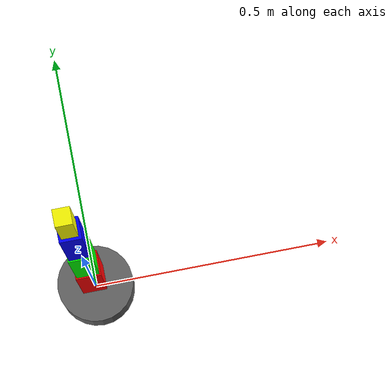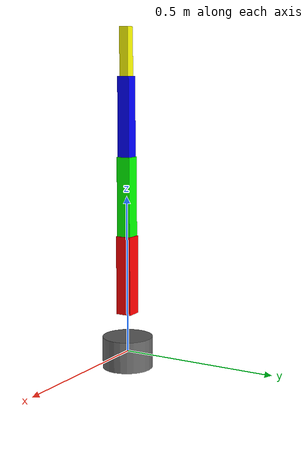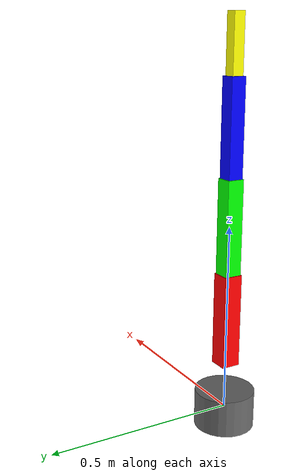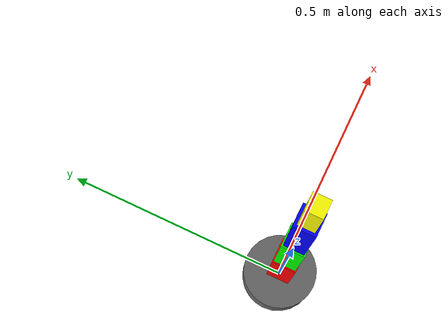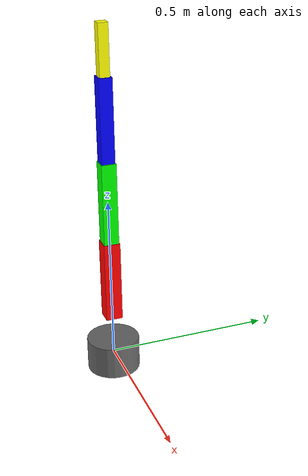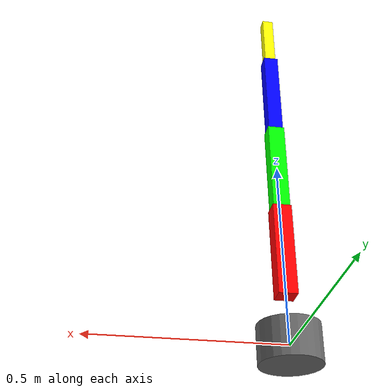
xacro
<?xml version="1.0"?>
<robot name="four_axis_robot" xmlns:xacro="http://www.ros.org/wiki/xacro">

  <!-- ros2_control include -->
  <xacro:include filename="$(find four_axis_moveit_config)/config/four_axis_robot.ros2_control.xacro"/>
  <xacro:four_axis_robot_ros2_control
    name="four_axis_robot"
    initial_positions_file="$(find four_axis_moveit_config)/config/initial_positions.yaml"/>

  <!-- ================= WORLD (dummy root for KDL) ================= -->
  <link name="world"/>
  <joint name="world_to_base" type="fixed">
    <parent link="world"/>
    <child link="base_link"/>
    <origin xyz="0 0 0" rpy="0 0 0"/>
  </joint>

  <!-- ================= BASE ================= -->
  <link name="base_link">
    <visual>
      <geometry><cylinder radius="0.08" length="0.10"/></geometry>
      <material name="gray"><color rgba="0.4 0.4 0.4 1"/></material>
    </visual>
    <collision>
      <geometry><cylinder radius="0.08" length="0.10"/></geometry>
    </collision>
    <inertial>
      <origin xyz="0 0 0" rpy="0 0 0"/>
      <mass value="10.0"/>
      <inertia ixx="0.1" ixy="0.0" ixz="0.0" iyy="0.1" iyz="0.0" izz="0.1"/>
    </inertial>
  </link>

  <!-- ================= SHOULDER ================= -->
  <link name="shoulder_link">
    <visual>
      <origin xyz="0 0 0.125" rpy="0 0 0"/>
      <geometry><box size="0.05 0.05 0.25"/></geometry>
      <material name="red"><color rgba="1 0 0 1"/></material>
    </visual>
    <collision>
      <origin xyz="0 0 0.125" rpy="0 0 0"/>
      <geometry><box size="0.05 0.05 0.25"/></geometry>
    </collision>
    <inertial>
      <origin xyz="0 0 0.125" rpy="0 0 0"/>
      <mass value="10.0"/>
      <inertia ixx="0.1" ixy="0.0" ixz="0.0" iyy="0.1" iyz="0.0" izz="0.1"/>
    </inertial>
  </link>

  <!-- ================= BICEP ================= -->
  <link name="bicep_link">
    <visual>
      <origin xyz="0.125 0 0" rpy="0 0 0"/>
      <geometry><box size="0.25 0.045 0.045"/></geometry>
      <material name="green"><color rgba="0 1 0 1"/></material>
    </visual>
    <collision>
      <origin xyz="0.125 0 0" rpy="0 0 0"/>
      <geometry><box size="0.25 0.045 0.045"/></geometry>
    </collision>
    <inertial>
      <origin xyz="0.125 0 0" rpy="0 0 0"/>
      <mass value="10.0"/>
      <inertia ixx="0.1" ixy="0.0" ixz="0.0" iyy="0.1" iyz="0.0" izz="0.1"/>
    </inertial>
  </link>

  <!-- ================= FOREARM ================= -->
  <link name="forearm_link">
    <visual>
      <origin xyz="0.125 0 0" rpy="0 0 0"/>
      <geometry><box size="0.25 0.040 0.040"/></geometry>
      <material name="blue"><color rgba="0 0 1 1"/></material>
    </visual>
    <collision>
      <origin xyz="0.125 0 0" rpy="0 0 0"/>
      <geometry><box size="0.25 0.040 0.040"/></geometry>
    </collision>
    <inertial>
      <origin xyz="0.125 0 0" rpy="0 0 0"/>
      <mass value="10.0"/>
      <inertia ixx="0.1" ixy="0.0" ixz="0.0" iyy="0.1" iyz="0.0" izz="0.1"/>
    </inertial>
  </link>

  <!-- ================= TOOL ================= -->
  <link name="tool0">
    <visual>
      <origin xyz="0.075 0 0" rpy="0 0 0"/>
      <geometry><box size="0.15 0.03 0.03"/></geometry>
      <material name="yellow"><color rgba="1 1 0 1"/></material>
    </visual>
    <collision>
      <origin xyz="0.075 0 0" rpy="0 0 0"/>
      <geometry><box size="0.15 0.03 0.03"/></geometry>
    </collision>
    <inertial>
      <origin xyz="0.075 0 0" rpy="0 0 0"/>
      <mass value="10.0"/>
      <inertia ixx="0.1" ixy="0.0" ixz="0.0" iyy="0.1" iyz="0.0" izz="0.1"/>
    </inertial>
  </link>

  <!-- ================= TCP ================= -->
  <link name="tcp">
    <inertial>
      <origin xyz="0 0 0" rpy="0 0 0"/>
      <mass value="0.1"/>
      <inertia ixx="0.001" ixy="0.0" ixz="0.0" iyy="0.001" iyz="0.0" izz="0.001"/>
    </inertial>
  </link>

  <!-- ================= JOINTS ================= -->
  <joint name="base_joint" type="revolute">
    <parent link="base_link"/>
    <child link="shoulder_link"/>
    <origin xyz="0 0 0.125" rpy="0 0 0"/>
    <axis xyz="0 0 1"/>
    <limit lower="-3.1416" upper="3.1416" effort="100.0" velocity="1.0"/>
  </joint>

  <joint name="shoulder_joint" type="revolute">
    <parent link="shoulder_link"/>
    <child link="bicep_link"/>
    <origin xyz="0 0 0.250" rpy="0 -1.5708 0"/>
    <axis xyz="0 1 0"/>
    <limit lower="-2.094" upper="2.094" effort="100.0" velocity="1.0"/>
  </joint>

  <joint name="elbow_joint" type="revolute">
    <parent link="bicep_link"/>
    <child link="forearm_link"/>
    <origin xyz="0.250 0 0" rpy="0 0 0"/>
    <axis xyz="0 1 0"/>
    <limit lower="-1.571" upper="1.571" effort="100.0" velocity="1.0"/>
  </joint>

  <joint name="wrist_joint" type="revolute">
    <parent link="forearm_link"/>
    <child link="tool0"/>
    <origin xyz="0.250 0 0" rpy="0 0 0"/>
    <axis xyz="0 1 0"/>
    <limit lower="-1.571" upper="1.571" effort="100.0" velocity="1.0"/>
  </joint>

  <joint name="tcp_joint" type="fixed">
    <parent link="tool0"/>
    <child link="tcp"/>
    <origin xyz="0.15 0 0" rpy="0 0 0"/>
  </joint>

  <gazebo>
    <plugin
      filename="libgz_ros2_control-system.so"
      name="gz_ros2_control::GazeboSimROS2ControlPlugin">

      <parameters>
        $(find four_axis_moveit_config)/config/ros2_controllers.yaml
      </parameters>

    </plugin>
  </gazebo>

</robot>
